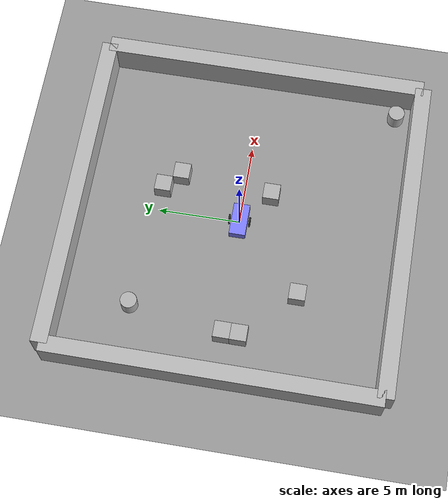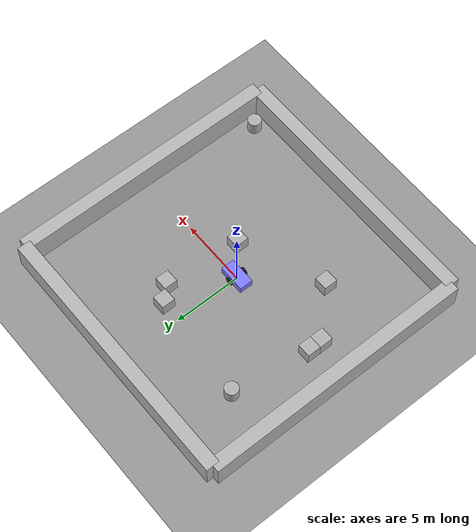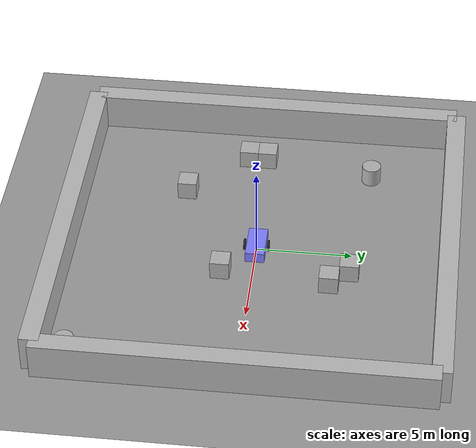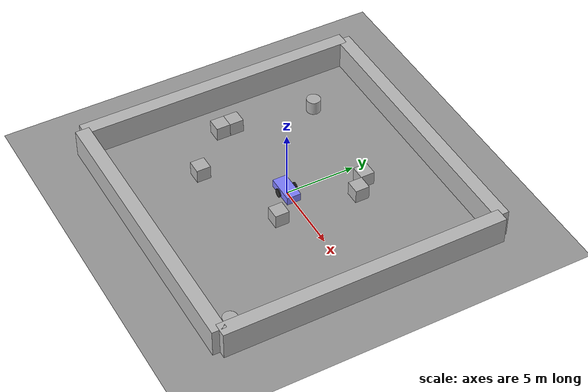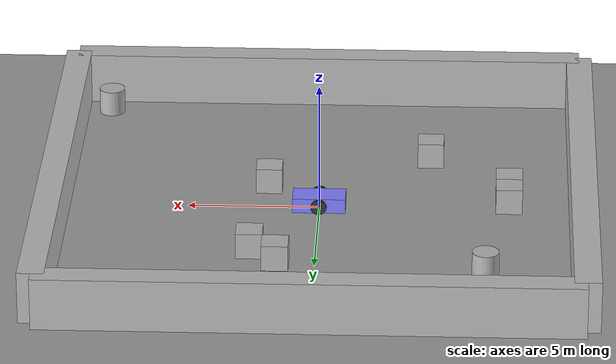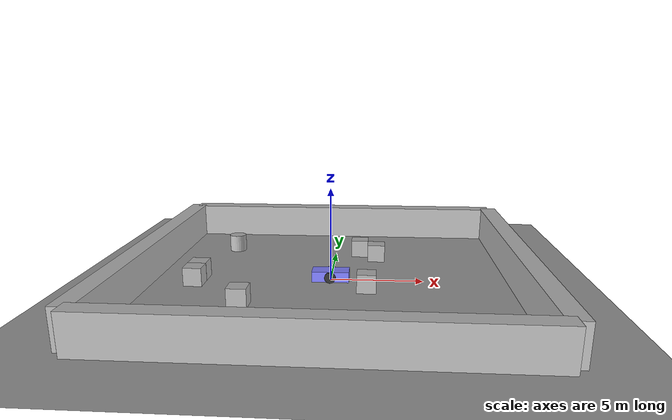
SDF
<sdf version='1.9'>
  <world name='enclosed_world'>
    <gravity>0 0 -9.81</gravity>
    <magnetic_field>6e-06 2.3e-05 -4.2e-05</magnetic_field>
    <atmosphere type='adiabatic'/>
    <physics type='ode'>
      <max_step_size>0.001</max_step_size>
      <real_time_factor>1</real_time_factor>
      <real_time_update_rate>1000</real_time_update_rate>
    </physics>
    <scene>
      <ambient>0.4 0.4 0.4 1</ambient>
      <background>0.7 0.7 0.7 1</background>
      <shadows>true</shadows>
    </scene>
    <model name='ground_plane'>
      <static>true</static>
      <link name='link'>
        <collision name='col'>
          <geometry>
            <plane>
              <normal>0 0 1</normal>
              <size>100 100</size>
            </plane>
          </geometry>
          <surface>
            <friction>
              <ode>
                <mu>1</mu>
                <mu2>1</mu2>
              </ode>
            </friction>
            <bounce/>
            <contact/>
          </surface>
        </collision>
        <visual name='vis'>
          <geometry>
            <plane>
              <normal>0 0 1</normal>
              <size>100 100</size>
            </plane>
          </geometry>
          <material>
            <ambient>0.6 0.6 0.6 1</ambient>
            <diffuse>0.6 0.6 0.6 1</diffuse>
          </material>
        </visual>
        <pose>0 0 0 0 -0 0</pose>
        <inertial>
          <pose>0 0 0 0 -0 0</pose>
          <mass>1</mass>
          <inertia>
            <ixx>1</ixx>
            <ixy>0</ixy>
            <ixz>0</ixz>
            <iyy>1</iyy>
            <iyz>0</iyz>
            <izz>1</izz>
          </inertia>
        </inertial>
        <enable_wind>false</enable_wind>
      </link>
      <pose>0 0 0 0 -0 0</pose>
      <self_collide>false</self_collide>
    </model>
    <model name='wall_north'>
      <static>true</static>
      <pose>0 10 1 0 -0 0</pose>
      <link name='l'>
        <collision name='c'>
          <geometry>
            <box>
              <size>20 1 2</size>
            </box>
          </geometry>
          <surface>
            <friction>
              <ode/>
            </friction>
            <bounce/>
            <contact/>
          </surface>
        </collision>
        <visual name='v'>
          <geometry>
            <box>
              <size>20 1 2</size>
            </box>
          </geometry>
        </visual>
        <pose>0 0 0 0 -0 0</pose>
        <inertial>
          <pose>0 0 0 0 -0 0</pose>
          <mass>1</mass>
          <inertia>
            <ixx>1</ixx>
            <ixy>0</ixy>
            <ixz>0</ixz>
            <iyy>1</iyy>
            <iyz>0</iyz>
            <izz>1</izz>
          </inertia>
        </inertial>
        <enable_wind>false</enable_wind>
      </link>
      <self_collide>false</self_collide>
    </model>
    <model name='wall_south'>
      <static>true</static>
      <pose>0 -10 1 0 -0 0</pose>
      <link name='l'>
        <collision name='c'>
          <geometry>
            <box>
              <size>20 1 2</size>
            </box>
          </geometry>
          <surface>
            <friction>
              <ode/>
            </friction>
            <bounce/>
            <contact/>
          </surface>
        </collision>
        <visual name='v'>
          <geometry>
            <box>
              <size>20 1 2</size>
            </box>
          </geometry>
        </visual>
        <pose>0 0 0 0 -0 0</pose>
        <inertial>
          <pose>0 0 0 0 -0 0</pose>
          <mass>1</mass>
          <inertia>
            <ixx>1</ixx>
            <ixy>0</ixy>
            <ixz>0</ixz>
            <iyy>1</iyy>
            <iyz>0</iyz>
            <izz>1</izz>
          </inertia>
        </inertial>
        <enable_wind>false</enable_wind>
      </link>
      <self_collide>false</self_collide>
    </model>
    <model name='wall_east'>
      <static>true</static>
      <pose>10 0 1 0 -0 0</pose>
      <link name='l'>
        <collision name='c'>
          <geometry>
            <box>
              <size>1 20 2</size>
            </box>
          </geometry>
          <surface>
            <friction>
              <ode/>
            </friction>
            <bounce/>
            <contact/>
          </surface>
        </collision>
        <visual name='v'>
          <geometry>
            <box>
              <size>1 20 2</size>
            </box>
          </geometry>
        </visual>
        <pose>0 0 0 0 -0 0</pose>
        <inertial>
          <pose>0 0 0 0 -0 0</pose>
          <mass>1</mass>
          <inertia>
            <ixx>1</ixx>
            <ixy>0</ixy>
            <ixz>0</ixz>
            <iyy>1</iyy>
            <iyz>0</iyz>
            <izz>1</izz>
          </inertia>
        </inertial>
        <enable_wind>false</enable_wind>
      </link>
      <self_collide>false</self_collide>
    </model>
    <model name='wall_west'>
      <static>true</static>
      <pose>-10 0 1 0 -0 0</pose>
      <link name='l'>
        <collision name='c'>
          <geometry>
            <box>
              <size>1 20 2</size>
            </box>
          </geometry>
          <surface>
            <friction>
              <ode/>
            </friction>
            <bounce/>
            <contact/>
          </surface>
        </collision>
        <visual name='v'>
          <geometry>
            <box>
              <size>1 20 2</size>
            </box>
          </geometry>
        </visual>
        <pose>0 0 0 0 -0 0</pose>
        <inertial>
          <pose>0 0 0 0 -0 0</pose>
          <mass>1</mass>
          <inertia>
            <ixx>1</ixx>
            <ixy>0</ixy>
            <ixz>0</ixz>
            <iyy>1</iyy>
            <iyz>0</iyz>
            <izz>1</izz>
          </inertia>
        </inertial>
        <enable_wind>false</enable_wind>
      </link>
      <self_collide>false</self_collide>
    </model>

    <model name='vehicle'>                                                                                      <!--vehicle imported here-->
      <self_collide>true</self_collide>
      <pose>0 0 0 0 0 0</pose>
      <include merge="true">
        <uri>file:///home/shanj/ros2_ws/models/vehicle</uri>
      </include>

      <plugin name='gz::sim::systems::JointStatePublisher' filename='gz-sim-joint-state-publisher-system'/>
      <plugin name='gz::sim::systems::PosePublisher' filename='gz-sim-pose-publisher-system'>
        <publish_link_pose>true</publish_link_pose>
        <use_pose_vector_msg>true</use_pose_vector_msg>
        <static_publisher>true</static_publisher>
        <static_update_frequency>1</static_update_frequency>
      </plugin>
      <plugin name='gz::sim::systems::OdometryPublisher' filename='gz-sim-odometry-publisher-system'>
        <odom_frame>vehicle/odom</odom_frame>
        <robot_base_frame>vehicle</robot_base_frame>
      </plugin>
      <plugin name='gz::sim::systems::Sensors' filename='gz-sim-sensors-system'/>
      <plugin name='gz::sim::systems::SceneBroadcaster' filename='gz-sim-scene-broadcaster-system'/>
      <static>false</static>
    </model>

    <model name='box'>
      <pose>1.4526 4.97376 0.5 0 -0 0</pose>
      <link name='box_link'>
        <inertial>
          <inertia>
            <ixx>0.16666</ixx>
            <ixy>0</ixy>
            <ixz>0</ixz>
            <iyy>0.16666</iyy>
            <iyz>0</iyz>
            <izz>0.16666</izz>
          </inertia>
          <mass>1</mass>
          <pose>0 0 0 0 -0 0</pose>
        </inertial>
        <collision name='box_collision'>
          <geometry>
            <box>
              <size>1 1 1</size>
            </box>
          </geometry>
          <surface>
            <friction>
              <ode/>
            </friction>
            <bounce/>
            <contact/>
          </surface>
        </collision>
        <visual name='box_visual'>
          <geometry>
            <box>
              <size>1 1 1</size>
            </box>
          </geometry>
          <material>
            <ambient>0.3 0.3 0.3 1</ambient>
            <diffuse>0.7 0.7 0.7 1</diffuse>
            <specular>1 1 1 1</specular>
          </material>
        </visual>
        <pose>0 0 0 0 -0 0</pose>
        <enable_wind>false</enable_wind>
      </link>
      <static>false</static>
      <self_collide>false</self_collide>
    </model>
    <model name='box_0'>
      <pose>-4.19096 -4.18339 0.5 0 -0 0</pose>
      <link name='box_link'>
        <inertial>
          <inertia>
            <ixx>0.16666</ixx>
            <ixy>0</ixy>
            <ixz>0</ixz>
            <iyy>0.16666</iyy>
            <iyz>0</iyz>
            <izz>0.16666</izz>
          </inertia>
          <mass>1</mass>
          <pose>0 0 0 0 -0 0</pose>
        </inertial>
        <collision name='box_collision'>
          <geometry>
            <box>
              <size>1 1 1</size>
            </box>
          </geometry>
          <surface>
            <friction>
              <ode/>
            </friction>
            <bounce/>
            <contact/>
          </surface>
        </collision>
        <visual name='box_visual'>
          <geometry>
            <box>
              <size>1 1 1</size>
            </box>
          </geometry>
          <material>
            <ambient>0.3 0.3 0.3 1</ambient>
            <diffuse>0.7 0.7 0.7 1</diffuse>
            <specular>1 1 1 1</specular>
          </material>
        </visual>
        <pose>0 0 0 0 -0 0</pose>
        <enable_wind>false</enable_wind>
      </link>
      <static>false</static>
      <self_collide>false</self_collide>
    </model>
    <model name='cylinder'>
      <pose>8.59508 -8.58918 0.499999 0 -0 -0</pose>
      <link name='cylinder_link'>
        <inertial>
          <inertia>
            <ixx>0.14580000000000001</ixx>
            <ixy>0</ixy>
            <ixz>0</ixz>
            <iyy>0.14580000000000001</iyy>
            <iyz>0</iyz>
            <izz>0.125</izz>
          </inertia>
          <mass>1</mass>
          <pose>0 0 0 0 -0 0</pose>
        </inertial>
        <collision name='cylinder_collision'>
          <geometry>
            <cylinder>
              <radius>0.5</radius>
              <length>1</length>
            </cylinder>
          </geometry>
          <surface>
            <friction>
              <ode/>
            </friction>
            <bounce/>
            <contact/>
          </surface>
        </collision>
        <visual name='cylinder_visual'>
          <geometry>
            <cylinder>
              <radius>0.5</radius>
              <length>1</length>
            </cylinder>
          </geometry>
          <material>
            <ambient>0.3 0.3 0.3 1</ambient>
            <diffuse>0.7 0.7 0.7 1</diffuse>
            <specular>1 1 1 1</specular>
          </material>
        </visual>
        <pose>0 0 0 0 -0 0</pose>
        <enable_wind>false</enable_wind>
      </link>
      <static>false</static>
      <self_collide>false</self_collide>
    </model>
    <model name='box_1'>
      <pose>-7.22369 -1.16734 0.5 -0 -0 0</pose>
      <link name='box_link'>
        <inertial>
          <inertia>
            <ixx>0.16666</ixx>
            <ixy>0</ixy>
            <ixz>0</ixz>
            <iyy>0.16666</iyy>
            <iyz>0</iyz>
            <izz>0.16666</izz>
          </inertia>
          <mass>1</mass>
          <pose>0 0 0 0 -0 0</pose>
        </inertial>
        <collision name='box_collision'>
          <geometry>
            <box>
              <size>1 1 1</size>
            </box>
          </geometry>
          <surface>
            <friction>
              <ode/>
            </friction>
            <bounce/>
            <contact/>
          </surface>
        </collision>
        <visual name='box_visual'>
          <geometry>
            <box>
              <size>1 1 1</size>
            </box>
          </geometry>
          <material>
            <ambient>0.3 0.3 0.3 1</ambient>
            <diffuse>0.7 0.7 0.7 1</diffuse>
            <specular>1 1 1 1</specular>
          </material>
        </visual>
        <pose>0 0 0 0 -0 0</pose>
        <enable_wind>false</enable_wind>
      </link>
      <static>false</static>
      <self_collide>false</self_collide>
    </model>
    <model name='cylinder_0'>
      <pose>-6.33546 5.57658 0.499999 0 0 -0</pose>
      <link name='cylinder_link'>
        <inertial>
          <inertia>
            <ixx>0.14580000000000001</ixx>
            <ixy>0</ixy>
            <ixz>0</ixz>
            <iyy>0.14580000000000001</iyy>
            <iyz>0</iyz>
            <izz>0.125</izz>
          </inertia>
          <mass>1</mass>
          <pose>0 0 0 0 -0 0</pose>
        </inertial>
        <collision name='cylinder_collision'>
          <geometry>
            <cylinder>
              <radius>0.5</radius>
              <length>1</length>
            </cylinder>
          </geometry>
          <surface>
            <friction>
              <ode/>
            </friction>
            <bounce/>
            <contact/>
          </surface>
        </collision>
        <visual name='cylinder_visual'>
          <geometry>
            <cylinder>
              <radius>0.5</radius>
              <length>1</length>
            </cylinder>
          </geometry>
          <material>
            <ambient>0.3 0.3 0.3 1</ambient>
            <diffuse>0.7 0.7 0.7 1</diffuse>
            <specular>1 1 1 1</specular>
          </material>
        </visual>
        <pose>0 0 0 0 -0 0</pose>
        <enable_wind>false</enable_wind>
      </link>
      <static>false</static>
      <self_collide>false</self_collide>
    </model>
    <model name='box_2'>
      <pose>-7.2207 -0.167337 0.5 -0 -0 0</pose>
      <link name='box_link'>
        <inertial>
          <inertia>
            <ixx>0.16666</ixx>
            <ixy>0</ixy>
            <ixz>0</ixz>
            <iyy>0.16666</iyy>
            <iyz>0</iyz>
            <izz>0.16666</izz>
          </inertia>
          <mass>1</mass>
          <pose>0 0 0 0 -0 0</pose>
        </inertial>
        <collision name='box_collision'>
          <geometry>
            <box>
              <size>1 1 1</size>
            </box>
          </geometry>
          <surface>
            <friction>
              <ode/>
            </friction>
            <bounce/>
            <contact/>
          </surface>
        </collision>
        <visual name='box_visual'>
          <geometry>
            <box>
              <size>1 1 1</size>
            </box>
          </geometry>
          <material>
            <ambient>0.3 0.3 0.3 1</ambient>
            <diffuse>0.7 0.7 0.7 1</diffuse>
            <specular>1 1 1 1</specular>
          </material>
        </visual>
        <pose>0 0 0 0 -0 0</pose>
        <enable_wind>false</enable_wind>
      </link>
      <static>false</static>
      <self_collide>false</self_collide>
    </model>
    <model name='box_3'>
      <pose>1.96996 -1.66338 0.5 0 -0 0</pose>
      <link name='box_link'>
        <inertial>
          <inertia>
            <ixx>0.16666</ixx>
            <ixy>0</ixy>
            <ixz>0</ixz>
            <iyy>0.16666</iyy>
            <iyz>0</iyz>
            <izz>0.16666</izz>
          </inertia>
          <mass>1</mass>
          <pose>0 0 0 0 -0 0</pose>
        </inertial>
        <collision name='box_collision'>
          <geometry>
            <box>
              <size>1 1 1</size>
            </box>
          </geometry>
          <surface>
            <friction>
              <ode/>
            </friction>
            <bounce/>
            <contact/>
          </surface>
        </collision>
        <visual name='box_visual'>
          <geometry>
            <box>
              <size>1 1 1</size>
            </box>
          </geometry>
          <material>
            <ambient>0.3 0.3 0.3 1</ambient>
            <diffuse>0.7 0.7 0.7 1</diffuse>
            <specular>1 1 1 1</specular>
          </material>
        </visual>
        <pose>0 0 0 0 -0 0</pose>
        <enable_wind>false</enable_wind>
      </link>
      <static>false</static>
      <self_collide>false</self_collide>
    </model>
    <model name='box_4'>
      <pose>2.45269 3.99691 0.5 0 -0 0</pose>
      <link name='box_link'>
        <inertial>
          <inertia>
            <ixx>0.16666</ixx>
            <ixy>0</ixy>
            <ixz>0</ixz>
            <iyy>0.16666</iyy>
            <iyz>0</iyz>
            <izz>0.16666</izz>
          </inertia>
          <mass>1</mass>
          <pose>0 0 0 0 -0 0</pose>
        </inertial>
        <collision name='box_collision'>
          <geometry>
            <box>
              <size>1 1 1</size>
            </box>
          </geometry>
          <surface>
            <friction>
              <ode/>
            </friction>
            <bounce/>
            <contact/>
          </surface>
        </collision>
        <visual name='box_visual'>
          <geometry>
            <box>
              <size>1 1 1</size>
            </box>
          </geometry>
          <material>
            <ambient>0.3 0.3 0.3 1</ambient>
            <diffuse>0.7 0.7 0.7 1</diffuse>
            <specular>1 1 1 1</specular>
          </material>
        </visual>
        <pose>0 0 0 0 -0 0</pose>
        <enable_wind>false</enable_wind>
      </link>
      <static>false</static>
      <self_collide>false</self_collide>
    </model>
    <light name='sun' type='directional'>
      <pose>0 0 10 0 -0 0</pose>
      <cast_shadows>true</cast_shadows>
      <intensity>1</intensity>
      <direction>-0.5 0.2 -1</direction>
      <diffuse>1 1 1 1</diffuse>
      <specular>0.1 0.1 0.1 1</specular>
      <attenuation>
        <range>10</range>
        <linear>1</linear>
        <constant>1</constant>
        <quadratic>0</quadratic>
      </attenuation>
      <spot>
        <inner_angle>0</inner_angle>
        <outer_angle>0</outer_angle>
        <falloff>0</falloff>
      </spot>
    </light>
  </world>
</sdf>

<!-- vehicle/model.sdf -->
<sdf version="1.8">
    <model name='vehicle'>
      <link name='chassis'>
        <pose>0 0 0.284363 0 0 0</pose>
        <inertial>
          <mass>1.14395</mass>
          <inertia>
            <ixx>0.126164</ixx>
            <ixy>0</ixy>
            <ixz>0</ixz>
            <iyy>0.416519</iyy>
            <iyz>0</iyz>
            <izz>0.481014</izz>
          </inertia>
        </inertial>
        <visual name='visual_chassis'>
          <geometry>
            <box>
              <size>2.01142 1 0.568726</size>
            </box>
          </geometry>
          <material>
            <ambient>0.5 0.5 1.0 1</ambient>
            <diffuse>0.5 0.5 1.0 1</diffuse>
            <specular>0.0 0.0 1.0 1</specular>
          </material>
        </visual>

	<sensor name='lidar' type='gpu_lidar'>           <!--2D lidar-->
	  <always_on>1</always_on>
    <visualize>true</visualize>
    <topic>/scan</topic>
	  <pose>0 0 0.60 0 0 0</pose>
	  <update_rate>15</update_rate>
    <lidar>
      <scan>
	      <horizontal>
		      <samples>640</samples>
     		  <resolution>1</resolution>
     		  <min_angle>-2.35619</min_angle>
     		  <max_angle>2.35619</max_angle>
   		  </horizontal>

        <vertical>
        	<samples>1</samples>
     		  <resolution>1</resolution>
     		  <min_angle>0</min_angle>
     		  <max_angle>0</max_angle>
        </vertical>
      </scan>
		    <range>
		      <min>0.1</min>
		      <max>30.0</max>
		      <resolution>0.01</resolution>
		    </range>
    </lidar>
	</sensor>

        <collision name='collision_chassis'>
          <geometry>
            <box>
              <size>2.01142 1 0.568726</size>
            </box>
          </geometry>
        </collision>
      </link>

      <link name='left_wheel'>
        <pose>0 0.625 0.3 0 0 0</pose>
        <inertial>
          <mass>2</mass>
          <inertia>
            <ixx>0.145833</ixx>
            <ixy>0</ixy>
            <ixz>0</ixz>
            <iyy>0.145833</iyy>
            <iyz>0</iyz>
            <izz>0.125</izz>
          </inertia>
        </inertial>
        <visual name='visual_left_wheel'>
          <geometry>
            <cylinder>
              <radius>0.3</radius>
              <length>0.08</length>
            </cylinder>
          </geometry>
          <pose>0 0 0 1.5708 0 0</pose>
          <material>
            <ambient>0.2 0.2 0.2 1</ambient>
            <diffuse>0.2 0.2 0.2 1</diffuse>
            <specular>0.2 0.2 0.2 1</specular>
          </material>
        </visual>
        <collision name='collision_left_wheel'>
          <geometry>
            <cylinder>
              <radius>0.3</radius>
              <length>0.08</length>
            </cylinder>
          </geometry>
          <pose>0 0 0 1.5708 0 0</pose>
          <surface>
            <friction>
              <ode>
                <mu>1.0</mu>
                <mu2>1.0</mu2>
              </ode>
            </friction>
          </surface>
        </collision>
      </link>

      <link name='right_wheel'>
        <pose>0 -0.625 0.3 0 0 0</pose>
        <inertial>
          <mass>2</mass>
          <inertia>
            <ixx>0.145833</ixx>
            <ixy>0</ixy>
            <ixz>0</ixz>
            <iyy>0.145833</iyy>
            <iyz>0</iyz>
            <izz>0.125</izz>
          </inertia>
        </inertial>
        <visual name='visual_right_wheel'>
          <geometry>
            <cylinder>
              <radius>0.3</radius>
              <length>0.08</length>
            </cylinder>
          </geometry>
          <pose>0 0 0 1.5708 0 0</pose>
          <material>
            <ambient>0.2 0.2 0.2 1</ambient>
            <diffuse>0.2 0.2 0.2 1</diffuse>
            <specular>0.2 0.2 0.2 1</specular>
          </material>
        </visual>
        <collision name='collision_right_wheel'>
          <geometry>
            <cylinder>
              <radius>0.3</radius>
              <length>0.08</length>
            </cylinder>
          </geometry>
          <pose>0 0 0 1.5708 0 0</pose>
          <surface>
            <friction>
              <ode>
                <mu>1.0</mu>
                <mu2>1.0</mu2>
              </ode>
            </friction>
          </surface>
        </collision>
      </link>

      <link name='caster'>
        <pose>-0.5 0 0.2 0 0 0</pose>
        <inertial>
          <mass>1</mass>
          <inertia>
            <ixx>0.1</ixx>
            <ixy>0</ixy>
            <ixz>0</ixz>
            <iyy>0.1</iyy>
            <iyz>0</iyz>
            <izz>0.1</izz>
          </inertia>
        </inertial>
        <visual name='visual_caster'>
          <geometry>
            <sphere>
              <radius>0.2</radius>
            </sphere>
          </geometry>
          <material>
            <ambient>0.2 0.2 0.2 1</ambient>
            <diffuse>0.2 0.2 0.2 1</diffuse>
            <specular>0.2 0.2 0.2 1</specular>
          </material>
        </visual>
        <collision name='collision_caster'>
          <geometry>
            <sphere>
              <radius>0.2</radius>
            </sphere>
          </geometry>
        </collision>
      </link>

      <joint name='left_wheel_joint' type='revolute'>
        <parent>chassis</parent>
        <child>left_wheel</child>
        <axis>
          <xyz>0 1 0</xyz>
          <limit>
            <lower>-1e16</lower>
            <upper>1e16</upper>
          </limit>
          <dynamics><damping>0.05</damping></dynamics>
        </axis>
      </joint>

      <joint name='right_wheel_joint' type='revolute'>
        <parent>chassis</parent>
        <child>right_wheel</child>
        <axis>
          <xyz>0 1 0</xyz>
          <limit>
            <lower>-1e16</lower>
            <upper>1e16</upper>
          </limit>
          <dynamics><damping>0.05</damping></dynamics>
        </axis>
      </joint>

      <joint name='caster_wheel' type='ball'>
        <parent>chassis</parent>
        <child>caster</child>
      </joint>

      <!--this is for teleop-->
      <plugin
        filename="ignition-gazebo-diff-drive-system"
        name="ignition::gazebo::systems::DiffDrive">
        <left_joint>left_wheel_joint</left_joint>
        <right_joint>right_wheel_joint</right_joint>
        <wheel_separation>1.25</wheel_separation>
        <wheel_radius>0.3</wheel_radius>
        <odom_publish_frequency>10</odom_publish_frequency>
        <max_linear_acceleration>3.0</max_linear_acceleration>
        <min_linear_acceleration>-3.0</min_linear_acceleration>
        <max_angular_acceleration>4.0</max_angular_acceleration>
        <min_angular_acceleration>-4.0</min_angular_acceleration>
        <max_linear_velocity>2.0</max_linear_velocity>
        <min_linear_velocity>-2.0</min_linear_velocity>
        <max_angular_velocity>2.5</max_angular_velocity>
        <min_angular_velocity>-2.5</min_angular_velocity>
        <topic>/cmd_vel</topic>
      </plugin>

    </model>
</sdf>
